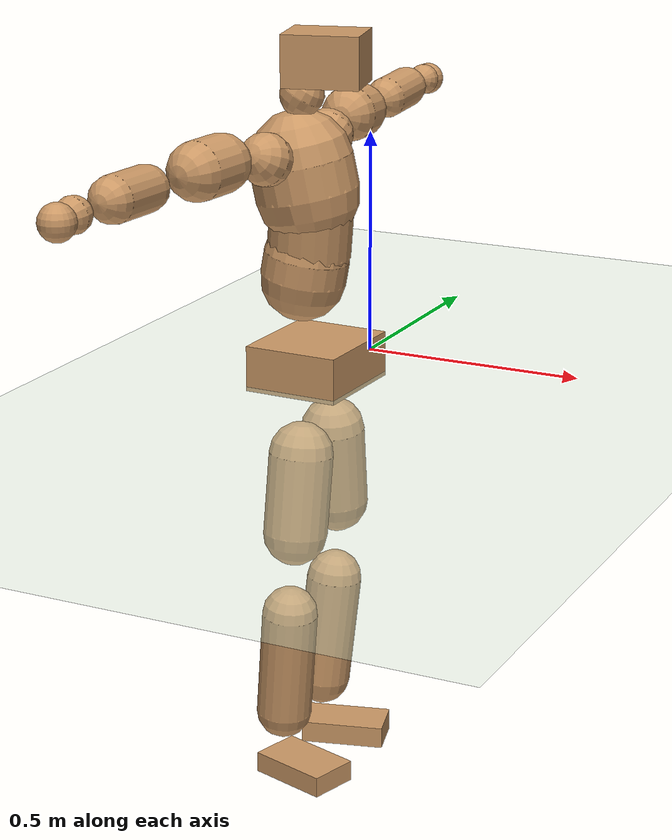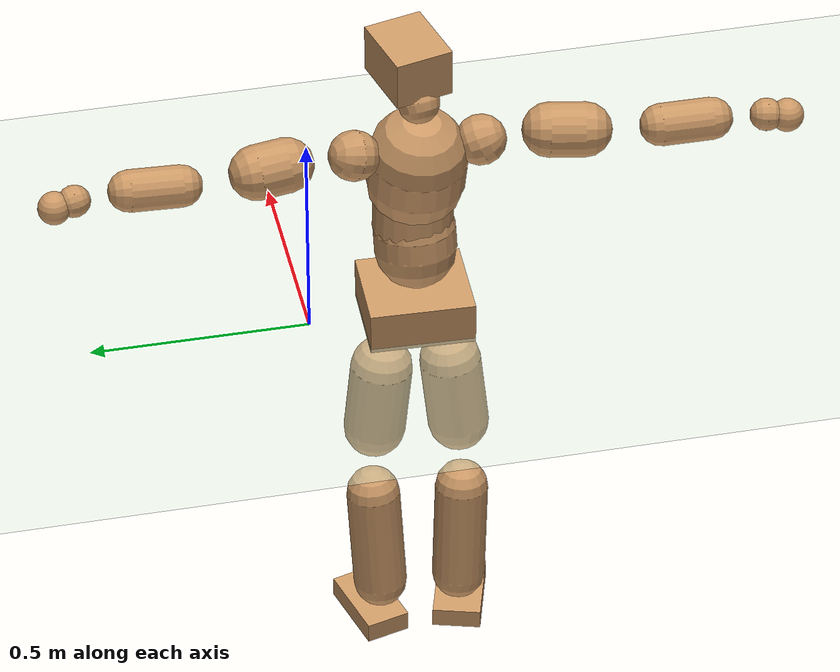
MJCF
<mujoco model="humanoid">
  <compiler coordinate="local" angle="radian"/>
  <default>
    <joint damping="0.0" armature="0.01" stiffness="0.0" limited="true"/>
    <geom conaffinity="1" condim="3" contype="7" margin="0.001" rgba="0.8 0.6 .4 1"/>
  </default>
  <asset>
    <texture type="skybox" builtin="gradient" rgb1=".4 .5 .6" rgb2="0 0 0" width="100" height="100"/>
    <texture builtin="flat" height="1278" mark="cross" markrgb="1 1 1" name="texgeom" random="0.01" rgb1="0.8 0.6 0.4" rgb2="0.8 0.6 0.4" type="cube" width="127"/>
    <texture builtin="checker" height="100" name="texplane" rgb1="0 0 0" rgb2="0.8 0.8 0.8" type="2d" width="100"/>
    <material name="MatPlane" reflectance="0.5" shininess="1" specular="1" texrepeat="60 60" texture="texplane"/>
    <material name="geom" texture="texgeom" texuniform="true"/>
  </asset>
  <worldbody>
    <light cutoff="100" diffuse="1 1 1" dir="-0 0 -1.3" directional="true" exponent="1" pos="0 0 1.3" specular=".1 .1 .1"/>
    <geom conaffinity="1" condim="3" name="floor" pos="0 0 0" rgba="0.8 0.9 0.8 1" size="100 100 .2" type="plane" material="MatPlane"/>
    <body name="Pelvis" pos="-0.0015 -0.2428 0.0464">
      <freejoint name="Pelvis"/>
      <geom type="box" contype="1" conaffinity="1" density="5359.374814" pos="-0.0117 0.0004 -0.0080" size="0.1064 0.12 0.0502" quat="0.9999 0.0000 0.0000 -0.0162" name="Pelvis"/>
      <body name="L_Hip" pos="-0.0119 0.0686 -0.0858">
        <joint name="L_Hip_x" type="hinge" pos="0 0 0" axis="1 0 0" stiffness="1600" damping="160" armature="0.02" range="-180.0000 180.0000"/>
        <joint name="L_Hip_y" type="hinge" pos="0 0 0" axis="0 1 0" stiffness="1600" damping="160" armature="0.02" range="-180.0000 180.0000"/>
        <joint name="L_Hip_z" type="hinge" pos="0 0 0" axis="0 0 1" stiffness="1600" damping="160" armature="0.02" range="-180.0000 180.0000"/>
        <geom type="capsule" contype="1" conaffinity="1" density="2040.816327" size="0.071" fromto="0.0001 0.0101 -0.1005 0.0002 0.0277 -0.2768" name="L_Hip"/>
        <body name="L_Knee" pos="0.0003 0.0378 -0.3773">
          <joint name="L_Knee_x" type="hinge" pos="0 0 0" axis="1 0 0" stiffness="1600" damping="160" armature="0.02" range="-180.0000 180.0000"/>
          <joint name="L_Knee_y" type="hinge" pos="0 0 0" axis="0 1 0" stiffness="1600" damping="160" armature="0.02" range="-180.0000 180.0000"/>
          <joint name="L_Knee_z" type="hinge" pos="0 0 0" axis="0 0 1" stiffness="1600" damping="160" armature="0.02" range="-180.0000 180.0000"/>
          <geom type="capsule" contype="1" conaffinity="1" density="1234.567901" size="0.062" fromto="-0.0092 -0.0038 -0.0914 -0.0346 -0.0142 -0.3433" name="L_Knee"/>
          <body name="L_Ankle" pos="-0.0438 -0.018 -0.4347">
            <joint name="L_Ankle_x" type="hinge" pos="0 0 0" axis="1 0 0" stiffness="1600" damping="160" armature="0.02" range="-180.0000 180.0000"/>
            <joint name="L_Ankle_y" type="hinge" pos="0 0 0" axis="0 1 0" stiffness="1600" damping="160" armature="0.02" range="-180.0000 180.0000"/>
            <joint name="L_Ankle_z" type="hinge" pos="0 0 0" axis="0 0 1" stiffness="1600" damping="160" armature="0.02" range="-180.0000 180.0000"/>
            <geom type="box" contype="1" conaffinity="1" density="999.999999" pos="0.0628 0.0168 -0.0301" size="0.094 0.0519 0.0242" quat="0.9914 0.0000 0.0000 0.1306" name="L_Ankle"/>
            <body name="L_Toe" pos="0.1255 0.0337 -0.0602">
              <joint name="L_Toe_x" type="hinge" pos="0 0 0" axis="1 0 0" stiffness="1000" damping="100" armature="0.02" range="-180.0000 180.0000"/>
              <joint name="L_Toe_y" type="hinge" pos="0 0 0" axis="0 1 0" stiffness="1000" damping="100" armature="0.02" range="-180.0000 180.0000"/>
              <joint name="L_Toe_z" type="hinge" pos="0 0 0" axis="0 0 1" stiffness="1000" damping="100" armature="0.02" range="-180.0000 180.0000"/>
              <geom type="box" contype="1" conaffinity="1" density="8734057.220511" pos="0.0000 0.0000 0.0292" size="0.0011 0.0026 0.0012" quat="0.9907 0.0000 0.0000 0.1359" name="L_Toe"/>
            </body>
          </body>
        </body>
      </body>
      <body name="R_Hip" pos="-0.0052 -0.0714 -0.0946">
        <joint name="R_Hip_x" type="hinge" pos="0 0 0" axis="1 0 0" stiffness="1600" damping="160" armature="0.02" range="-180.0000 180.0000"/>
        <joint name="R_Hip_y" type="hinge" pos="0 0 0" axis="0 1 0" stiffness="1600" damping="160" armature="0.02" range="-180.0000 180.0000"/>
        <joint name="R_Hip_z" type="hinge" pos="0 0 0" axis="0 0 1" stiffness="1600" damping="160" armature="0.02" range="-180.0000 180.0000"/>
        <geom type="capsule" contype="1" conaffinity="1" density="2040.816327" size="0.0707" fromto="-0.0034 -0.0102 -0.1001 -0.0095 -0.0287 -0.2800" name="R_Hip"/>
        <body name="R_Knee" pos="-0.0129 -0.0389 -0.3802">
          <joint name="R_Knee_x" type="hinge" pos="0 0 0" axis="1 0 0" stiffness="1600" damping="160" armature="0.02" range="-180.0000 180.0000"/>
          <joint name="R_Knee_y" type="hinge" pos="0 0 0" axis="0 1 0" stiffness="1600" damping="160" armature="0.02" range="-180.0000 180.0000"/>
          <joint name="R_Knee_z" type="hinge" pos="0 0 0" axis="0 0 1" stiffness="1600" damping="160" armature="0.02" range="-180.0000 180.0000"/>
          <geom type="capsule" contype="1" conaffinity="1" density="1234.567901" size="0.0616" fromto="-0.0087 0.0043 -0.0911 -0.0321 0.0159 -0.3371" name="R_Knee"/>
          <body name="R_Ankle" pos="-0.0407 0.0202 -0.4282">
            <joint name="R_Ankle_x" type="hinge" pos="0 0 0" axis="1 0 0" stiffness="1600" damping="160" armature="0.02" range="-180.0000 180.0000"/>
            <joint name="R_Ankle_y" type="hinge" pos="0 0 0" axis="0 1 0" stiffness="1600" damping="160" armature="0.02" range="-180.0000 180.0000"/>
            <joint name="R_Ankle_z" type="hinge" pos="0 0 0" axis="0 0 1" stiffness="1600" damping="160" armature="0.02" range="-180.0000 180.0000"/>
            <geom type="box" contype="1" conaffinity="1" density="1000.000001" pos="0.0664 -0.0197 -0.0306" size="0.0923 0.0562 0.0232" quat="0.9896 0.0000 0.0000 -0.1440" name="R_Ankle"/>
            <body name="R_Toe" pos="0.1327 -0.0395 -0.0613">
              <joint name="R_Toe_x" type="hinge" pos="0 0 0" axis="1 0 0" stiffness="1000" damping="100" armature="0.02" range="-180.0000 180.0000"/>
              <joint name="R_Toe_y" type="hinge" pos="0 0 0" axis="0 1 0" stiffness="1000" damping="100" armature="0.02" range="-180.0000 180.0000"/>
              <joint name="R_Toe_z" type="hinge" pos="0 0 0" axis="0 0 1" stiffness="1000" damping="100" armature="0.02" range="-180.0000 180.0000"/>
              <geom type="box" contype="1" conaffinity="1" density="7920130.11061" pos="0.0000 0.0000 0.0315" size="0.0012 0.0027 0.0012" quat="0.9908 0.0000 0.0000 -0.1352" name="R_Toe"/>
            </body>
          </body>
        </body>
      </body>
      <body name="Torso" pos="-0.0529 0.0051 0.1324">
        <joint name="Torso_x" type="hinge" pos="0 0 0" axis="1 0 0" stiffness="2000" damping="200" armature="0.02" range="-180.0000 180.0000"/>
        <joint name="Torso_y" type="hinge" pos="0 0 0" axis="0 1 0" stiffness="2000" damping="200" armature="0.02" range="-180.0000 180.0000"/>
        <joint name="Torso_z" type="hinge" pos="0 0 0" axis="0 0 1" stiffness="2000" damping="200" armature="0.02" range="-180.0000 180.0000"/>
        <geom type="capsule" contype="1" conaffinity="1" density="2040.816327" size="0.0936" fromto="0.0159 0.0027 0.0922 0.0071 0.0012 0.0414" name="Torso"/>
        <body name="Spine" pos="0.023 0.0039 0.1336">
          <joint name="Spine_x" type="hinge" pos="0 0 0" axis="1 0 0" stiffness="2000" damping="200" armature="0.02" range="-180.0000 180.0000"/>
          <joint name="Spine_y" type="hinge" pos="0 0 0" axis="0 1 0" stiffness="2000" damping="200" armature="0.02" range="-180.0000 180.0000"/>
          <joint name="Spine_z" type="hinge" pos="0 0 0" axis="0 0 1" stiffness="2000" damping="200" armature="0.02" range="-180.0000 180.0000"/>
          <geom type="capsule" contype="1" conaffinity="1" density="2040.816327" size="0.0913" fromto="0.0096 -0.0052 0.0907 -0.0039 0.0021 -0.0363" name="Spine"/>
          <body name="Chest" pos="0.0058 -0.0031 0.0544">
            <joint name="Chest_x" type="hinge" pos="0 0 0" axis="1 0 0" stiffness="2000" damping="200" armature="0.02" range="-180.0000 180.0000"/>
            <joint name="Chest_y" type="hinge" pos="0 0 0" axis="0 1 0" stiffness="2000" damping="200" armature="0.02" range="-180.0000 180.0000"/>
            <joint name="Chest_z" type="hinge" pos="0 0 0" axis="0 0 1" stiffness="2000" damping="200" armature="0.02" range="-180.0000 180.0000"/>
            <geom type="capsule" contype="1" conaffinity="1" density="2040.816327" size="0.1123" fromto="-0.0213 -0.0056 0.1101 -0.0076 -0.0020 0.0394" name="Chest"/>
            <body name="Neck" pos="-0.042 -0.0128 0.2139">
              <joint name="Neck_x" type="hinge" pos="0 0 0" axis="1 0 0" stiffness="1000" damping="100" armature="0.02" range="-180.0000 180.0000"/>
              <joint name="Neck_y" type="hinge" pos="0 0 0" axis="0 1 0" stiffness="1000" damping="100" armature="0.02" range="-180.0000 180.0000"/>
              <joint name="Neck_z" type="hinge" pos="0 0 0" axis="0 0 1" stiffness="1000" damping="100" armature="0.02" range="-180.0000 180.0000"/>
              <geom type="capsule" contype="1" conaffinity="1" density="1000" size="0.0477" fromto="0.0257 0.0055 0.0399 0.0244 0.0052 0.0378" name="Neck"/>
              <body name="Head" pos="0.0501 0.0107 0.0777">
                <joint name="Head_x" type="hinge" pos="0 0 0" axis="1 0 0" stiffness="1000" damping="100" armature="0.02" range="-180.0000 180.0000"/>
                <joint name="Head_y" type="hinge" pos="0 0 0" axis="0 1 0" stiffness="1000" damping="100" armature="0.02" range="-180.0000 180.0000"/>
                <joint name="Head_z" type="hinge" pos="0 0 0" axis="0 0 1" stiffness="1000" damping="100" armature="0.02" range="-180.0000 180.0000"/>
                <geom type="box" contype="1" conaffinity="1" density="2249.999925" pos="0.0260 0.0064 0.0398" size="0.0832 0.0669 0.0556" quat="0.9928 0.0000 0.0000 0.1198" name="Head"/>
              </body>
            </body>
            <body name="L_Thorax" pos="-0.0198 0.0755 0.1181">
              <joint name="L_Thorax_x" type="hinge" pos="0 0 0" axis="1 0 0" stiffness="1000" damping="100" armature="0.02" range="-180.0000 180.0000"/>
              <joint name="L_Thorax_y" type="hinge" pos="0 0 0" axis="0 1 0" stiffness="1000" damping="100" armature="0.02" range="-180.0000 180.0000"/>
              <joint name="L_Thorax_z" type="hinge" pos="0 0 0" axis="0 0 1" stiffness="1000" damping="100" armature="0.02" range="-180.0000 180.0000"/>
              <geom type="capsule" contype="1" conaffinity="1" density="1000" size="0.0575" fromto="-0.0126 0.0637 0.0208 -0.0130 0.0656 0.0214" name="L_Thorax"/>
              <body name="L_Shoulder" pos="-0.0256 0.1293 0.0422">
                <joint name="L_Shoulder_x" type="hinge" pos="0 0 0" axis="1 0 0" stiffness="1000" damping="100" armature="0.02" range="-720.0000 720.0000"/>
                <joint name="L_Shoulder_y" type="hinge" pos="0 0 0" axis="0 1 0" stiffness="1000" damping="100" armature="0.02" range="-720.0000 720.0000"/>
                <joint name="L_Shoulder_z" type="hinge" pos="0 0 0" axis="0 0 1" stiffness="1000" damping="100" armature="0.02" range="-720.0000 720.0000"/>
                <geom type="capsule" contype="1" conaffinity="1" density="1000" size="0.0621" fromto="-0.0106 0.0913 -0.0048 -0.0185 0.1587 -0.0084" name="L_Shoulder"/>
                <body name="L_Elbow" pos="-0.0291 0.25 -0.0133">
                  <joint name="L_Elbow_x" type="hinge" pos="0 0 0" axis="1 0 0" stiffness="1000" damping="100" armature="0.02" range="-720.0000 720.0000"/>
                  <joint name="L_Elbow_y" type="hinge" pos="0 0 0" axis="0 1 0" stiffness="1000" damping="100" armature="0.02" range="-720.0000 720.0000"/>
                  <joint name="L_Elbow_z" type="hinge" pos="0 0 0" axis="0 0 1" stiffness="1000" damping="100" armature="0.02" range="-720.0000 720.0000"/>
                  <geom type="capsule" contype="1" conaffinity="1" density="1000" size="0.0471" fromto="-0.0014 0.0770 0.0042 -0.0036 0.1932 0.0105" name="L_Elbow"/>
                  <body name="L_Wrist" pos="-0.005 0.2702 0.0147">
                    <joint name="L_Wrist_x" type="hinge" pos="0 0 0" axis="1 0 0" stiffness="600" damping="60" armature="0.02" range="-180.0000 180.0000"/>
                    <joint name="L_Wrist_y" type="hinge" pos="0 0 0" axis="0 1 0" stiffness="600" damping="60" armature="0.02" range="-180.0000 180.0000"/>
                    <joint name="L_Wrist_z" type="hinge" pos="0 0 0" axis="0 0 1" stiffness="600" damping="60" armature="0.02" range="-180.0000 180.0000"/>
                    <geom type="capsule" contype="1" conaffinity="1" density="1000" size="0.0358" fromto="-0.0078 0.0438 -0.0055 -0.0082 0.0458 -0.0057" name="L_Wrist"/>
                    <body name="L_Hand" pos="-0.016 0.0896 -0.0112">
                      <joint name="L_Hand_x" type="hinge" pos="0 0 0" axis="1 0 0" stiffness="600" damping="60" armature="0.02" range="-180.0000 180.0000"/>
                      <joint name="L_Hand_y" type="hinge" pos="0 0 0" axis="0 1 0" stiffness="600" damping="60" armature="0.02" range="-180.0000 180.0000"/>
                      <joint name="L_Hand_z" type="hinge" pos="0 0 0" axis="0 0 1" stiffness="600" damping="60" armature="0.02" range="-180.0000 180.0000"/>
                      <geom type="sphere" contype="1" conaffinity="1" density="1000" size="0.0369" pos="0.0000 0.0000 0.0000" name="L_Hand"/>
                    </body>
                  </body>
                </body>
              </body>
            </body>
            <body name="R_Thorax" pos="-0.025 -0.0853 0.1165">
              <joint name="R_Thorax_x" type="hinge" pos="0 0 0" axis="1 0 0" stiffness="1000" damping="100" armature="0.02" range="-180.0000 180.0000"/>
              <joint name="R_Thorax_y" type="hinge" pos="0 0 0" axis="0 1 0" stiffness="1000" damping="100" armature="0.02" range="-180.0000 180.0000"/>
              <joint name="R_Thorax_z" type="hinge" pos="0 0 0" axis="0 0 1" stiffness="1000" damping="100" armature="0.02" range="-180.0000 180.0000"/>
              <geom type="capsule" contype="1" conaffinity="1" density="1000" size="0.0571" fromto="-0.0065 -0.0583 0.0219 -0.0067 -0.0601 0.0226" name="R_Thorax"/>
              <body name="R_Shoulder" pos="-0.0133 -0.1184 0.0444">
                <joint name="R_Shoulder_x" type="hinge" pos="0 0 0" axis="1 0 0" stiffness="1000" damping="100" armature="0.02" range="-720.0000 720.0000"/>
                <joint name="R_Shoulder_y" type="hinge" pos="0 0 0" axis="0 1 0" stiffness="1000" damping="100" armature="0.02" range="-720.0000 720.0000"/>
                <joint name="R_Shoulder_z" type="hinge" pos="0 0 0" axis="0 0 1" stiffness="1000" damping="100" armature="0.02" range="-720.0000 720.0000"/>
                <geom type="capsule" contype="1" conaffinity="1" density="1000" size="0.0621" fromto="-0.0142 -0.0910 -0.0029 -0.0261 -0.1676 -0.0054" name="R_Shoulder"/>
                <body name="R_Elbow" pos="-0.0403 -0.2586 -0.0084">
                  <joint name="R_Elbow_x" type="hinge" pos="0 0 0" axis="1 0 0" stiffness="1000" damping="100" armature="0.02" range="-720.0000 720.0000"/>
                  <joint name="R_Elbow_y" type="hinge" pos="0 0 0" axis="0 1 0" stiffness="1000" damping="100" armature="0.02" range="-720.0000 720.0000"/>
                  <joint name="R_Elbow_z" type="hinge" pos="0 0 0" axis="0 0 1" stiffness="1000" damping="100" armature="0.02" range="-720.0000 720.0000"/>
                  <geom type="capsule" contype="1" conaffinity="1" density="1000" size="0.0476" fromto="-0.0019 -0.0776 0.0013 -0.0047 -0.1926 0.0032" name="R_Elbow"/>
                  <body name="R_Wrist" pos="-0.0066 -0.2702 0.0045">
                    <joint name="R_Wrist_x" type="hinge" pos="0 0 0" axis="1 0 0" stiffness="600" damping="60" armature="0.02" range="-180.0000 180.0000"/>
                    <joint name="R_Wrist_y" type="hinge" pos="0 0 0" axis="0 1 0" stiffness="600" damping="60" armature="0.02" range="-180.0000 180.0000"/>
                    <joint name="R_Wrist_z" type="hinge" pos="0 0 0" axis="0 0 1" stiffness="600" damping="60" armature="0.02" range="-180.0000 180.0000"/>
                    <geom type="capsule" contype="1" conaffinity="1" density="1000" size="0.0368" fromto="-0.0050 -0.0451 -0.0046 -0.0052 -0.0470 -0.0048" name="R_Wrist"/>
                    <body name="R_Hand" pos="-0.0102 -0.0921 -0.0094">
                      <joint name="R_Hand_x" type="hinge" pos="0 0 0" axis="1 0 0" stiffness="600" damping="60" armature="0.02" range="-180.0000 180.0000"/>
                      <joint name="R_Hand_y" type="hinge" pos="0 0 0" axis="0 1 0" stiffness="600" damping="60" armature="0.02" range="-180.0000 180.0000"/>
                      <joint name="R_Hand_z" type="hinge" pos="0 0 0" axis="0 0 1" stiffness="600" damping="60" armature="0.02" range="-180.0000 180.0000"/>
                      <geom type="sphere" contype="1" conaffinity="1" density="1000" size="0.0376" pos="0.0000 0.0000 0.0000" name="R_Hand"/>
                    </body>
                  </body>
                </body>
              </body>
            </body>
          </body>
        </body>
      </body>
    </body>
  </worldbody>
  <actuator>
    <motor name="L_Hip_x" joint="L_Hip_x" gear="500"/>
    <motor name="L_Hip_y" joint="L_Hip_y" gear="500"/>
    <motor name="L_Hip_z" joint="L_Hip_z" gear="500"/>
    <motor name="L_Knee_x" joint="L_Knee_x" gear="500"/>
    <motor name="L_Knee_y" joint="L_Knee_y" gear="500"/>
    <motor name="L_Knee_z" joint="L_Knee_z" gear="500"/>
    <motor name="L_Ankle_x" joint="L_Ankle_x" gear="500"/>
    <motor name="L_Ankle_y" joint="L_Ankle_y" gear="500"/>
    <motor name="L_Ankle_z" joint="L_Ankle_z" gear="500"/>
    <motor name="L_Toe_x" joint="L_Toe_x" gear="500"/>
    <motor name="L_Toe_y" joint="L_Toe_y" gear="500"/>
    <motor name="L_Toe_z" joint="L_Toe_z" gear="500"/>
    <motor name="R_Hip_x" joint="R_Hip_x" gear="500"/>
    <motor name="R_Hip_y" joint="R_Hip_y" gear="500"/>
    <motor name="R_Hip_z" joint="R_Hip_z" gear="500"/>
    <motor name="R_Knee_x" joint="R_Knee_x" gear="500"/>
    <motor name="R_Knee_y" joint="R_Knee_y" gear="500"/>
    <motor name="R_Knee_z" joint="R_Knee_z" gear="500"/>
    <motor name="R_Ankle_x" joint="R_Ankle_x" gear="500"/>
    <motor name="R_Ankle_y" joint="R_Ankle_y" gear="500"/>
    <motor name="R_Ankle_z" joint="R_Ankle_z" gear="500"/>
    <motor name="R_Toe_x" joint="R_Toe_x" gear="500"/>
    <motor name="R_Toe_y" joint="R_Toe_y" gear="500"/>
    <motor name="R_Toe_z" joint="R_Toe_z" gear="500"/>
    <motor name="Torso_x" joint="Torso_x" gear="500"/>
    <motor name="Torso_y" joint="Torso_y" gear="500"/>
    <motor name="Torso_z" joint="Torso_z" gear="500"/>
    <motor name="Spine_x" joint="Spine_x" gear="500"/>
    <motor name="Spine_y" joint="Spine_y" gear="500"/>
    <motor name="Spine_z" joint="Spine_z" gear="500"/>
    <motor name="Chest_x" joint="Chest_x" gear="500"/>
    <motor name="Chest_y" joint="Chest_y" gear="500"/>
    <motor name="Chest_z" joint="Chest_z" gear="500"/>
    <motor name="Neck_x" joint="Neck_x" gear="500"/>
    <motor name="Neck_y" joint="Neck_y" gear="500"/>
    <motor name="Neck_z" joint="Neck_z" gear="500"/>
    <motor name="Head_x" joint="Head_x" gear="500"/>
    <motor name="Head_y" joint="Head_y" gear="500"/>
    <motor name="Head_z" joint="Head_z" gear="500"/>
    <motor name="L_Thorax_x" joint="L_Thorax_x" gear="500"/>
    <motor name="L_Thorax_y" joint="L_Thorax_y" gear="500"/>
    <motor name="L_Thorax_z" joint="L_Thorax_z" gear="500"/>
    <motor name="L_Shoulder_x" joint="L_Shoulder_x" gear="500"/>
    <motor name="L_Shoulder_y" joint="L_Shoulder_y" gear="500"/>
    <motor name="L_Shoulder_z" joint="L_Shoulder_z" gear="500"/>
    <motor name="L_Elbow_x" joint="L_Elbow_x" gear="500"/>
    <motor name="L_Elbow_y" joint="L_Elbow_y" gear="500"/>
    <motor name="L_Elbow_z" joint="L_Elbow_z" gear="500"/>
    <motor name="L_Wrist_x" joint="L_Wrist_x" gear="500"/>
    <motor name="L_Wrist_y" joint="L_Wrist_y" gear="500"/>
    <motor name="L_Wrist_z" joint="L_Wrist_z" gear="500"/>
    <motor name="L_Hand_x" joint="L_Hand_x" gear="500"/>
    <motor name="L_Hand_y" joint="L_Hand_y" gear="500"/>
    <motor name="L_Hand_z" joint="L_Hand_z" gear="500"/>
    <motor name="R_Thorax_x" joint="R_Thorax_x" gear="500"/>
    <motor name="R_Thorax_y" joint="R_Thorax_y" gear="500"/>
    <motor name="R_Thorax_z" joint="R_Thorax_z" gear="500"/>
    <motor name="R_Shoulder_x" joint="R_Shoulder_x" gear="500"/>
    <motor name="R_Shoulder_y" joint="R_Shoulder_y" gear="500"/>
    <motor name="R_Shoulder_z" joint="R_Shoulder_z" gear="500"/>
    <motor name="R_Elbow_x" joint="R_Elbow_x" gear="500"/>
    <motor name="R_Elbow_y" joint="R_Elbow_y" gear="500"/>
    <motor name="R_Elbow_z" joint="R_Elbow_z" gear="500"/>
    <motor name="R_Wrist_x" joint="R_Wrist_x" gear="500"/>
    <motor name="R_Wrist_y" joint="R_Wrist_y" gear="500"/>
    <motor name="R_Wrist_z" joint="R_Wrist_z" gear="500"/>
    <motor name="R_Hand_x" joint="R_Hand_x" gear="500"/>
    <motor name="R_Hand_y" joint="R_Hand_y" gear="500"/>
    <motor name="R_Hand_z" joint="R_Hand_z" gear="500"/>
  </actuator>
  <contact>
    <exclude body1="Torso" body2="Chest"/>
    <exclude body1="Head" body2="Chest"/>
    <exclude body1="R_Knee" body2="R_Toe"/>
    <exclude body1="R_Knee" body2="L_Ankle"/>
    <exclude body1="R_Knee" body2="L_Toe"/>
    <exclude body1="L_Knee" body2="L_Toe"/>
    <exclude body1="L_Knee" body2="R_Ankle"/>
    <exclude body1="L_Knee" body2="R_Toe"/>
    <exclude body1="L_Shoulder" body2="Chest"/>
    <exclude body1="R_Shoulder" body2="Chest"/>
  </contact>
  <sensor/>
  <size njmax="700" nconmax="700"/>
</mujoco>
